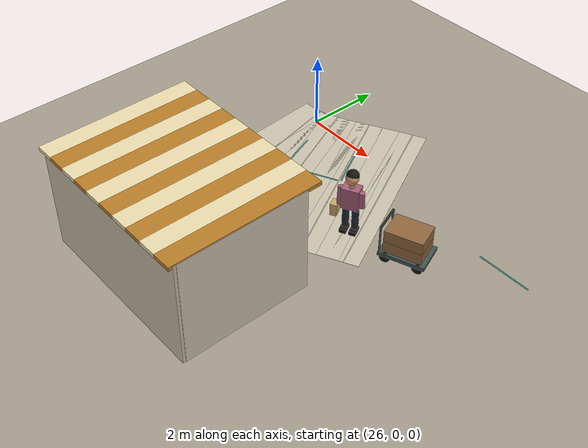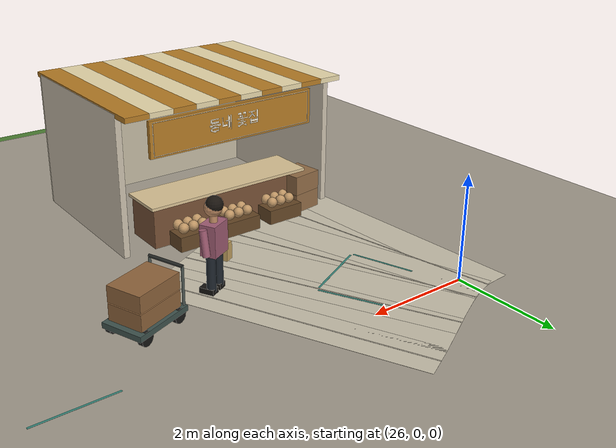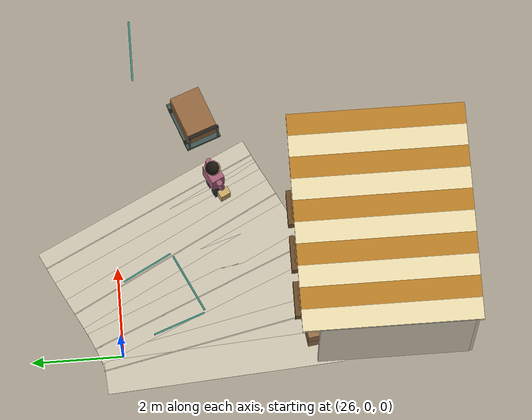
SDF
<sdf version="1.10">
 <world name="swan_town">
  <model name="ground_plane">
   <pose>-14 30 -0.025 0 0 0</pose>
   <static>true</static>
   <link name="link">
    <collision name="collision">
     <geometry><plane><normal>0 0 1</normal><size>100 100</size></plane></geometry>
    </collision>
    <visual name="visual">
     <geometry><plane><normal>0 0 1</normal><size>100 100</size></plane></geometry>
     <material><ambient>0.3 0.5 0.2 1</ambient><diffuse>0.3 0.5 0.2 1</diffuse></material>
    </visual>
   </link>
  </model>
  <model name="ground">
   <static>true</static>
   <pose>15 0 -0.1 0 0 0</pose>
   <link name="body">
    <collision name="box_collision"><geometry><box><size>46 24 0.2</size></box></geometry></collision>
    <visual name="box_visual">
     <geometry><box><size>46 24 0.2</size></box></geometry>
     <material><ambient>0.64 0.61 0.55 1</ambient><diffuse>0.64 0.61 0.55 1</diffuse></material>
    </visual>
   </link>
  </model>
  <model name="market_paving_55">
   <static>true</static>
   <pose>25.75 -2.191 0.002 0 0 0.072021</pose>
   <link name="body">
    <visual name="box_visual">
     <geometry><box><size>0.75 5.2 0.004</size></box></geometry>
     <material><ambient>0.79 0.76 0.68 1</ambient><diffuse>0.79 0.76 0.68 1</diffuse></material>
    </visual>
   </link>
  </model>
  <model name="market_paving_56">
   <static>true</static>
   <pose>26.25 -2.1197 0.002 0 0 0.2079</pose>
   <link name="body">
    <visual name="box_visual">
     <geometry><box><size>0.75 5.2 0.004</size></box></geometry>
     <material><ambient>0.79 0.76 0.68 1</ambient><diffuse>0.79 0.76 0.68 1</diffuse></material>
    </visual>
   </link>
  </model>
  <model name="paving_joint_56">
   <static>true</static>
   <pose>26.25 -2.1197 0.0045 0 0 0.2079</pose>
   <link name="body">
    <visual name="box_visual">
     <geometry><box><size>0.025 5.2 0.001</size></box></geometry>
     <material><ambient>0.67 0.64 0.57 1</ambient><diffuse>0.67 0.64 0.57 1</diffuse></material>
    </visual>
   </link>
  </model>
  <model name="market_paving_57">
   <static>true</static>
   <pose>26.75 -1.9827 0.002 0 0 0.32217</pose>
   <link name="body">
    <visual name="box_visual">
     <geometry><box><size>0.75 5.2 0.004</size></box></geometry>
     <material><ambient>0.79 0.76 0.68 1</ambient><diffuse>0.79 0.76 0.68 1</diffuse></material>
    </visual>
   </link>
  </model>
  <model name="market_paving_58">
   <static>true</static>
   <pose>27.25 -1.7901 0.002 0 0 0.40758</pose>
   <link name="body">
    <visual name="box_visual">
     <geometry><box><size>0.75 5.2 0.004</size></box></geometry>
     <material><ambient>0.79 0.76 0.68 1</ambient><diffuse>0.79 0.76 0.68 1</diffuse></material>
    </visual>
   </link>
  </model>
  <model name="paving_joint_58">
   <static>true</static>
   <pose>27.25 -1.7901 0.0045 0 0 0.40758</pose>
   <link name="body">
    <visual name="box_visual">
     <geometry><box><size>0.025 5.2 0.001</size></box></geometry>
     <material><ambient>0.67 0.64 0.57 1</ambient><diffuse>0.67 0.64 0.57 1</diffuse></material>
    </visual>
   </link>
  </model>
  <model name="market_paving_59">
   <static>true</static>
   <pose>27.75 -1.5562 0.002 0 0 0.46221</pose>
   <link name="body">
    <visual name="box_visual">
     <geometry><box><size>0.75 5.2 0.004</size></box></geometry>
     <material><ambient>0.79 0.76 0.68 1</ambient><diffuse>0.79 0.76 0.68 1</diffuse></material>
    </visual>
   </link>
  </model>
  <model name="market_paving_60">
   <static>true</static>
   <pose>28.25 -1.2978 0.002 0 0 0.48699</pose>
   <link name="body">
    <visual name="box_visual">
     <geometry><box><size>0.75 5.2 0.004</size></box></geometry>
     <material><ambient>0.79 0.76 0.68 1</ambient><diffuse>0.79 0.76 0.68 1</diffuse></material>
    </visual>
   </link>
  </model>
  <model name="paving_joint_60">
   <static>true</static>
   <pose>28.25 -1.2978 0.0045 0 0 0.48699</pose>
   <link name="body">
    <visual name="box_visual">
     <geometry><box><size>0.025 5.2 0.001</size></box></geometry>
     <material><ambient>0.67 0.64 0.57 1</ambient><diffuse>0.67 0.64 0.57 1</diffuse></material>
    </visual>
   </link>
  </model>
  <model name="market_paving_61">
   <static>true</static>
   <pose>28.75 -1.0326 0.002 0 0 0.48375</pose>
   <link name="body">
    <visual name="box_visual">
     <geometry><box><size>0.75 5.2 0.004</size></box></geometry>
     <material><ambient>0.79 0.76 0.68 1</ambient><diffuse>0.79 0.76 0.68 1</diffuse></material>
    </visual>
   </link>
  </model>
  <model name="market_paving_62">
   <static>true</static>
   <pose>29.25 -0.77782 0.002 0 0 0.45458</pose>
   <link name="body">
    <visual name="box_visual">
     <geometry><box><size>0.75 5.2 0.004</size></box></geometry>
     <material><ambient>0.79 0.76 0.68 1</ambient><diffuse>0.79 0.76 0.68 1</diffuse></material>
    </visual>
   </link>
  </model>
  <model name="paving_joint_62">
   <static>true</static>
   <pose>29.25 -0.77782 0.0045 0 0 0.45458</pose>
   <link name="body">
    <visual name="box_visual">
     <geometry><box><size>0.025 5.2 0.001</size></box></geometry>
     <material><ambient>0.67 0.64 0.57 1</ambient><diffuse>0.67 0.64 0.57 1</diffuse></material>
    </visual>
   </link>
  </model>
  <model name="stall_07">
   <static>true</static>
   <pose>28 -5.8789 0 0 0 0</pose>
   <link name="body">
    <collision name="rear_collision">
     <pose>0 -1.65 1.4 0 0 0</pose>
     <geometry><box><size>4.8 0.15 2.8</size></box></geometry>
    </collision>
    <visual name="rear_visual">
     <pose>0 -1.65 1.4 0 0 0</pose>
     <geometry><box><size>4.8 0.15 2.8</size></box></geometry>
     <material><ambient>0.78 0.74 0.65 1</ambient><diffuse>0.78 0.74 0.65 1</diffuse></material>
    </visual>
    <collision name="side_-2.35_collision">
     <pose>-2.35 0 1.4 0 0 0</pose>
     <geometry><box><size>0.12 3.3 2.8</size></box></geometry>
    </collision>
    <visual name="side_-2.35_visual">
     <pose>-2.35 0 1.4 0 0 0</pose>
     <geometry><box><size>0.12 3.3 2.8</size></box></geometry>
     <material><ambient>0.81 0.77 0.69 1</ambient><diffuse>0.81 0.77 0.69 1</diffuse></material>
    </visual>
    <collision name="side_2.35_collision">
     <pose>2.35 0 1.4 0 0 0</pose>
     <geometry><box><size>0.12 3.3 2.8</size></box></geometry>
    </collision>
    <visual name="side_2.35_visual">
     <pose>2.35 0 1.4 0 0 0</pose>
     <geometry><box><size>0.12 3.3 2.8</size></box></geometry>
     <material><ambient>0.81 0.77 0.69 1</ambient><diffuse>0.81 0.77 0.69 1</diffuse></material>
    </visual>
    <collision name="counter_collision">
     <pose>0 1.22 0.4 0 0 0</pose>
     <geometry><box><size>3.5 0.85 0.8</size></box></geometry>
    </collision>
    <visual name="counter_visual">
     <pose>0 1.22 0.4 0 0 0</pose>
     <geometry><box><size>3.5 0.85 0.8</size></box></geometry>
     <material><ambient>0.47 0.32 0.21 1</ambient><diffuse>0.47 0.32 0.21 1</diffuse></material>
    </visual>
    <collision name="counter_top_collision">
     <pose>0 1.22 0.83 0 0 0</pose>
     <geometry><box><size>3.6 0.95 0.06</size></box></geometry>
    </collision>
    <visual name="counter_top_visual">
     <pose>0 1.22 0.83 0 0 0</pose>
     <geometry><box><size>3.6 0.95 0.06</size></box></geometry>
     <material><ambient>0.86 0.77 0.59 1</ambient><diffuse>0.86 0.77 0.59 1</diffuse></material>
    </visual>
    <collision name="awning_0_collision">
     <pose>-2.16 0.1 2.78 0 0 0</pose>
     <geometry><box><size>0.48 3.85 0.1</size></box></geometry>
    </collision>
    <visual name="awning_0_visual">
     <pose>-2.16 0.1 2.78 0 0 0</pose>
     <geometry><box><size>0.48 3.85 0.1</size></box></geometry>
     <material><ambient>0.92 0.86 0.68 1</ambient><diffuse>0.92 0.86 0.68 1</diffuse></material>
    </visual>
    <collision name="awning_1_collision">
     <pose>-1.68 0.1 2.78 0 0 0</pose>
     <geometry><box><size>0.48 3.85 0.1</size></box></geometry>
    </collision>
    <visual name="awning_1_visual">
     <pose>-1.68 0.1 2.78 0 0 0</pose>
     <geometry><box><size>0.48 3.85 0.1</size></box></geometry>
     <material><ambient>0.72 0.49 0.15 1</ambient><diffuse>0.72 0.49 0.15 1</diffuse></material>
    </visual>
    <collision name="awning_2_collision">
     <pose>-1.2 0.1 2.78 0 0 0</pose>
     <geometry><box><size>0.48 3.85 0.1</size></box></geometry>
    </collision>
    <visual name="awning_2_visual">
     <pose>-1.2 0.1 2.78 0 0 0</pose>
     <geometry><box><size>0.48 3.85 0.1</size></box></geometry>
     <material><ambient>0.92 0.86 0.68 1</ambient><diffuse>0.92 0.86 0.68 1</diffuse></material>
    </visual>
    <collision name="awning_3_collision">
     <pose>-0.72 0.1 2.78 0 0 0</pose>
     <geometry><box><size>0.48 3.85 0.1</size></box></geometry>
    </collision>
    <visual name="awning_3_visual">
     <pose>-0.72 0.1 2.78 0 0 0</pose>
     <geometry><box><size>0.48 3.85 0.1</size></box></geometry>
     <material><ambient>0.72 0.49 0.15 1</ambient><diffuse>0.72 0.49 0.15 1</diffuse></material>
    </visual>
    <collision name="awning_4_collision">
     <pose>-0.24 0.1 2.78 0 0 0</pose>
     <geometry><box><size>0.48 3.85 0.1</size></box></geometry>
    </collision>
    <visual name="awning_4_visual">
     <pose>-0.24 0.1 2.78 0 0 0</pose>
     <geometry><box><size>0.48 3.85 0.1</size></box></geometry>
     <material><ambient>0.92 0.86 0.68 1</ambient><diffuse>0.92 0.86 0.68 1</diffuse></material>
    </visual>
    <collision name="awning_5_collision">
     <pose>0.24 0.1 2.78 0 0 0</pose>
     <geometry><box><size>0.48 3.85 0.1</size></box></geometry>
    </collision>
    <visual name="awning_5_visual">
     <pose>0.24 0.1 2.78 0 0 0</pose>
     <geometry><box><size>0.48 3.85 0.1</size></box></geometry>
     <material><ambient>0.72 0.49 0.15 1</ambient><diffuse>0.72 0.49 0.15 1</diffuse></material>
    </visual>
    <collision name="awning_6_collision">
     <pose>0.72 0.1 2.78 0 0 0</pose>
     <geometry><box><size>0.48 3.85 0.1</size></box></geometry>
    </collision>
    <visual name="awning_6_visual">
     <pose>0.72 0.1 2.78 0 0 0</pose>
     <geometry><box><size>0.48 3.85 0.1</size></box></geometry>
     <material><ambient>0.92 0.86 0.68 1</ambient><diffuse>0.92 0.86 0.68 1</diffuse></material>
    </visual>
    <collision name="awning_7_collision">
     <pose>1.2 0.1 2.78 0 0 0</pose>
     <geometry><box><size>0.48 3.85 0.1</size></box></geometry>
    </collision>
    <visual name="awning_7_visual">
     <pose>1.2 0.1 2.78 0 0 0</pose>
     <geometry><box><size>0.48 3.85 0.1</size></box></geometry>
     <material><ambient>0.72 0.49 0.15 1</ambient><diffuse>0.72 0.49 0.15 1</diffuse></material>
    </visual>
    <collision name="awning_8_collision">
     <pose>1.68 0.1 2.78 0 0 0</pose>
     <geometry><box><size>0.48 3.85 0.1</size></box></geometry>
    </collision>
    <visual name="awning_8_visual">
     <pose>1.68 0.1 2.78 0 0 0</pose>
     <geometry><box><size>0.48 3.85 0.1</size></box></geometry>
     <material><ambient>0.92 0.86 0.68 1</ambient><diffuse>0.92 0.86 0.68 1</diffuse></material>
    </visual>
    <collision name="awning_9_collision">
     <pose>2.16 0.1 2.78 0 0 0</pose>
     <geometry><box><size>0.48 3.85 0.1</size></box></geometry>
    </collision>
    <visual name="awning_9_visual">
     <pose>2.16 0.1 2.78 0 0 0</pose>
     <geometry><box><size>0.48 3.85 0.1</size></box></geometry>
     <material><ambient>0.72 0.49 0.15 1</ambient><diffuse>0.72 0.49 0.15 1</diffuse></material>
    </visual>
    <collision name="crate_-1_collision">
     <pose>-1.04 1.77 0.15 0 0 0</pose>
     <geometry><box><size>0.78 0.6 0.3</size></box></geometry>
    </collision>
    <visual name="crate_-1_visual">
     <pose>-1.04 1.77 0.15 0 0 0</pose>
     <geometry><box><size>0.78 0.6 0.3</size></box></geometry>
     <material><ambient>0.4 0.28 0.15 1</ambient><diffuse>0.4 0.28 0.15 1</diffuse></material>
    </visual>
    <visual name="produce_-1_0_visual">
     <pose>-1.25 1.66 0.39 0 0 0</pose>
     <geometry><sphere><radius>0.105</radius></sphere></geometry>
     <material><ambient>0.74 0.58 0.39 1</ambient><diffuse>0.74 0.58 0.39 1</diffuse></material>
    </visual>
    <visual name="produce_-1_1_visual">
     <pose>-1.04 1.66 0.39 0 0 0</pose>
     <geometry><sphere><radius>0.105</radius></sphere></geometry>
     <material><ambient>0.74 0.58 0.39 1</ambient><diffuse>0.74 0.58 0.39 1</diffuse></material>
    </visual>
    <visual name="produce_-1_2_visual">
     <pose>-0.83 1.66 0.39 0 0 0</pose>
     <geometry><sphere><radius>0.105</radius></sphere></geometry>
     <material><ambient>0.74 0.58 0.39 1</ambient><diffuse>0.74 0.58 0.39 1</diffuse></material>
    </visual>
    <visual name="produce_-1_3_visual">
     <pose>-1.25 1.88 0.39 0 0 0</pose>
     <geometry><sphere><radius>0.105</radius></sphere></geometry>
     <material><ambient>0.74 0.58 0.39 1</ambient><diffuse>0.74 0.58 0.39 1</diffuse></material>
    </visual>
    <visual name="produce_-1_4_visual">
     <pose>-1.04 1.88 0.39 0 0 0</pose>
     <geometry><sphere><radius>0.105</radius></sphere></geometry>
     <material><ambient>0.74 0.58 0.39 1</ambient><diffuse>0.74 0.58 0.39 1</diffuse></material>
    </visual>
    <visual name="produce_-1_5_visual">
     <pose>-0.83 1.88 0.39 0 0 0</pose>
     <geometry><sphere><radius>0.105</radius></sphere></geometry>
     <material><ambient>0.74 0.58 0.39 1</ambient><diffuse>0.74 0.58 0.39 1</diffuse></material>
    </visual>
    <collision name="crate_0_collision">
     <pose>0 1.77 0.15 0 0 0</pose>
     <geometry><box><size>0.78 0.6 0.3</size></box></geometry>
    </collision>
    <visual name="crate_0_visual">
     <pose>0 1.77 0.15 0 0 0</pose>
     <geometry><box><size>0.78 0.6 0.3</size></box></geometry>
     <material><ambient>0.4 0.28 0.15 1</ambient><diffuse>0.4 0.28 0.15 1</diffuse></material>
    </visual>
    <visual name="produce_0_0_visual">
     <pose>-0.21 1.66 0.39 0 0 0</pose>
     <geometry><sphere><radius>0.105</radius></sphere></geometry>
     <material><ambient>0.74 0.58 0.39 1</ambient><diffuse>0.74 0.58 0.39 1</diffuse></material>
    </visual>
    <visual name="produce_0_1_visual">
     <pose>0 1.66 0.39 0 0 0</pose>
     <geometry><sphere><radius>0.105</radius></sphere></geometry>
     <material><ambient>0.74 0.58 0.39 1</ambient><diffuse>0.74 0.58 0.39 1</diffuse></material>
    </visual>
    <visual name="produce_0_2_visual">
     <pose>0.21 1.66 0.39 0 0 0</pose>
     <geometry><sphere><radius>0.105</radius></sphere></geometry>
     <material><ambient>0.74 0.58 0.39 1</ambient><diffuse>0.74 0.58 0.39 1</diffuse></material>
    </visual>
    <visual name="produce_0_3_visual">
     <pose>-0.21 1.88 0.39 0 0 0</pose>
     <geometry><sphere><radius>0.105</radius></sphere></geometry>
     <material><ambient>0.74 0.58 0.39 1</ambient><diffuse>0.74 0.58 0.39 1</diffuse></material>
    </visual>
    <visual name="produce_0_4_visual">
     <pose>0 1.88 0.39 0 0 0</pose>
     <geometry><sphere><radius>0.105</radius></sphere></geometry>
     <material><ambient>0.74 0.58 0.39 1</ambient><diffuse>0.74 0.58 0.39 1</diffuse></material>
    </visual>
    <visual name="produce_0_5_visual">
     <pose>0.21 1.88 0.39 0 0 0</pose>
     <geometry><sphere><radius>0.105</radius></sphere></geometry>
     <material><ambient>0.74 0.58 0.39 1</ambient><diffuse>0.74 0.58 0.39 1</diffuse></material>
    </visual>
    <collision name="crate_1_collision">
     <pose>1.04 1.77 0.15 0 0 0</pose>
     <geometry><box><size>0.78 0.6 0.3</size></box></geometry>
    </collision>
    <visual name="crate_1_visual">
     <pose>1.04 1.77 0.15 0 0 0</pose>
     <geometry><box><size>0.78 0.6 0.3</size></box></geometry>
     <material><ambient>0.4 0.28 0.15 1</ambient><diffuse>0.4 0.28 0.15 1</diffuse></material>
    </visual>
    <visual name="produce_1_0_visual">
     <pose>0.83 1.66 0.39 0 0 0</pose>
     <geometry><sphere><radius>0.105</radius></sphere></geometry>
     <material><ambient>0.74 0.58 0.39 1</ambient><diffuse>0.74 0.58 0.39 1</diffuse></material>
    </visual>
    <visual name="produce_1_1_visual">
     <pose>1.04 1.66 0.39 0 0 0</pose>
     <geometry><sphere><radius>0.105</radius></sphere></geometry>
     <material><ambient>0.74 0.58 0.39 1</ambient><diffuse>0.74 0.58 0.39 1</diffuse></material>
    </visual>
    <visual name="produce_1_2_visual">
     <pose>1.25 1.66 0.39 0 0 0</pose>
     <geometry><sphere><radius>0.105</radius></sphere></geometry>
     <material><ambient>0.74 0.58 0.39 1</ambient><diffuse>0.74 0.58 0.39 1</diffuse></material>
    </visual>
    <visual name="produce_1_3_visual">
     <pose>0.83 1.88 0.39 0 0 0</pose>
     <geometry><sphere><radius>0.105</radius></sphere></geometry>
     <material><ambient>0.74 0.58 0.39 1</ambient><diffuse>0.74 0.58 0.39 1</diffuse></material>
    </visual>
    <visual name="produce_1_4_visual">
     <pose>1.04 1.88 0.39 0 0 0</pose>
     <geometry><sphere><radius>0.105</radius></sphere></geometry>
     <material><ambient>0.74 0.58 0.39 1</ambient><diffuse>0.74 0.58 0.39 1</diffuse></material>
    </visual>
    <visual name="produce_1_5_visual">
     <pose>1.25 1.88 0.39 0 0 0</pose>
     <geometry><sphere><radius>0.105</radius></sphere></geometry>
     <material><ambient>0.74 0.58 0.39 1</ambient><diffuse>0.74 0.58 0.39 1</diffuse></material>
    </visual>
   </link>
  </model>
  <model name="signboard_7">
   <static>true</static>
   <pose>28 -4.1189 2.24 0 0 0</pose>
   <link name="body">
    <collision name="box_collision"><geometry><box><size>3.65 0.08 0.72</size></box></geometry></collision>
    <visual name="box_visual">
     <geometry><box><size>3.65 0.08 0.72</size></box></geometry>
     <material><ambient>0.72 0.49 0.15 1</ambient><diffuse>0.72 0.49 0.15 1</diffuse></material>
    </visual>
   </link>
  </model>
  <model name="sign_shop_7">
   <static>true</static>
   <pose>28 -4.0709 2.24 0 0 -3.14158530718</pose>
   <link name="body">
    <visual name="top_visual">
     <pose>0 -0.003 0.32062 0 0 0</pose>
     <geometry><box><size>3.5136 0.003 0.0108</size></box></geometry>
     <material><ambient>1 0.961 0.875 1</ambient><diffuse>1 0.961 0.875 1</diffuse></material>
    </visual>
    <visual name="bottom_visual">
     <pose>0 -0.003 -0.32062 0 0 0</pose>
     <geometry><box><size>3.5136 0.003 0.0108</size></box></geometry>
     <material><ambient>1 0.961 0.875 1</ambient><diffuse>1 0.961 0.875 1</diffuse></material>
    </visual>
    <visual name="left_visual">
     <pose>-1.7568 -0.003 0 0 0 0</pose>
     <geometry><box><size>0.0108 0.003 0.64125</size></box></geometry>
     <material><ambient>1 0.961 0.875 1</ambient><diffuse>1 0.961 0.875 1</diffuse></material>
    </visual>
    <visual name="right_visual">
     <pose>1.7568 -0.003 0 0 0 0</pose>
     <geometry><box><size>0.0108 0.003 0.64125</size></box></geometry>
     <material><ambient>1 0.961 0.875 1</ambient><diffuse>1 0.961 0.875 1</diffuse></material>
    </visual>
    <visual name="ink_0_visual">
     <pose>-0.14062 -0.003 0.15938 0 0 0</pose>
     <geometry><box><size>0.01875 0.003 0.01875</size></box></geometry>
     <material><ambient>1 0.961 0.875 1</ambient><diffuse>1 0.961 0.875 1</diffuse></material>
    </visual>
    <visual name="ink_1_visual">
     <pose>-0.45 -0.003 0.14062 0 0 0</pose>
     <geometry><box><size>0.1875 0.003 0.01875</size></box></geometry>
     <material><ambient>1 0.961 0.875 1</ambient><diffuse>1 0.961 0.875 1</diffuse></material>
    </visual>
    <visual name="ink_2_visual">
     <pose>0.1125 -0.003 0.15 0 0 0</pose>
     <geometry><box><size>0.075 0.003 0.0375</size></box></geometry>
     <material><ambient>1 0.961 0.875 1</ambient><diffuse>1 0.961 0.875 1</diffuse></material>
    </visual>
    <visual name="ink_3_visual">
     <pose>0.225 -0.003 0.15 0 0 0</pose>
     <geometry><box><size>0.075 0.003 0.0375</size></box></geometry>
     <material><ambient>1 0.961 0.875 1</ambient><diffuse>1 0.961 0.875 1</diffuse></material>
    </visual>
    <visual name="ink_4_visual">
     <pose>0.40312 -0.003 0.14062 0 0 0</pose>
     <geometry><box><size>0.16875 0.003 0.01875</size></box></geometry>
     <material><ambient>1 0.961 0.875 1</ambient><diffuse>1 0.961 0.875 1</diffuse></material>
    </visual>
    <visual name="ink_5_visual">
     <pose>0.14062 -0.003 0.12188 0 0 0</pose>
     <geometry><box><size>0.01875 0.003 0.01875</size></box></geometry>
     <material><ambient>1 0.961 0.875 1</ambient><diffuse>1 0.961 0.875 1</diffuse></material>
    </visual>
    <visual name="ink_6_visual">
     <pose>0.39375 -0.003 0.12188 0 0 0</pose>
     <geometry><box><size>0.0375 0.003 0.01875</size></box></geometry>
     <material><ambient>1 0.961 0.875 1</ambient><diffuse>1 0.961 0.875 1</diffuse></material>
    </visual>
    <visual name="ink_7_visual">
     <pose>-0.525 -0.003 0.1125 0 0 0</pose>
     <geometry><box><size>0.0375 0.003 0.0375</size></box></geometry>
     <material><ambient>1 0.961 0.875 1</ambient><diffuse>1 0.961 0.875 1</diffuse></material>
    </visual>
    <visual name="ink_8_visual">
     <pose>0.40312 -0.003 0.10313 0 0 0</pose>
     <geometry><box><size>0.01875 0.003 0.01875</size></box></geometry>
     <material><ambient>1 0.961 0.875 1</ambient><diffuse>1 0.961 0.875 1</diffuse></material>
    </visual>
    <visual name="ink_9_visual">
     <pose>-0.45 -0.003 0.084375 0 0 0</pose>
     <geometry><box><size>0.1875 0.003 0.01875</size></box></geometry>
     <material><ambient>1 0.961 0.875 1</ambient><diffuse>1 0.961 0.875 1</diffuse></material>
    </visual>
    <visual name="ink_10_visual">
     <pose>-0.13125 -0.003 0.1125 0 0 0</pose>
     <geometry><box><size>0.0375 0.003 0.075</size></box></geometry>
     <material><ambient>1 0.961 0.875 1</ambient><diffuse>1 0.961 0.875 1</diffuse></material>
    </visual>
    <visual name="ink_11_visual">
     <pose>0.13125 -0.003 0.09375 0 0 0</pose>
     <geometry><box><size>0.0375 0.003 0.0375</size></box></geometry>
     <material><ambient>1 0.961 0.875 1</ambient><diffuse>1 0.961 0.875 1</diffuse></material>
    </visual>
    <visual name="ink_12_visual">
     <pose>0.17812 -0.003 0.09375 0 0 0</pose>
     <geometry><box><size>0.01875 0.003 0.0375</size></box></geometry>
     <material><ambient>1 0.961 0.875 1</ambient><diffuse>1 0.961 0.875 1</diffuse></material>
    </visual>
    <visual name="ink_13_visual">
     <pose>0.25312 -0.003 0.10313 0 0 0</pose>
     <geometry><box><size>0.01875 0.003 0.05625</size></box></geometry>
     <material><ambient>1 0.961 0.875 1</ambient><diffuse>1 0.961 0.875 1</diffuse></material>
    </visual>
    <visual name="ink_14_visual">
     <pose>0.40312 -0.003 0.084375 0 0 0</pose>
     <geometry><box><size>0.05625 0.003 0.01875</size></box></geometry>
     <material><ambient>1 0.961 0.875 1</ambient><diffuse>1 0.961 0.875 1</diffuse></material>
    </visual>
    <visual name="ink_15_visual">
     <pose>-0.44062 -0.003 0.065625 0 0 0</pose>
     <geometry><box><size>0.16875 0.003 0.01875</size></box></geometry>
     <material><ambient>1 0.961 0.875 1</ambient><diffuse>1 0.961 0.875 1</diffuse></material>
    </visual>
    <visual name="ink_16_visual">
     <pose>-0.15937 -0.003 0.065625 0 0 0</pose>
     <geometry><box><size>0.09375 0.003 0.01875</size></box></geometry>
     <material><ambient>1 0.961 0.875 1</ambient><diffuse>1 0.961 0.875 1</diffuse></material>
    </visual>
    <visual name="ink_17_visual">
     <pose>0.16875 -0.003 0.065625 0 0 0</pose>
     <geometry><box><size>0.0375 0.003 0.01875</size></box></geometry>
     <material><ambient>1 0.961 0.875 1</ambient><diffuse>1 0.961 0.875 1</diffuse></material>
    </visual>
    <visual name="ink_18_visual">
     <pose>0.375 -0.003 0.065625 0 0 0</pose>
     <geometry><box><size>0.0375 0.003 0.01875</size></box></geometry>
     <material><ambient>1 0.961 0.875 1</ambient><diffuse>1 0.961 0.875 1</diffuse></material>
    </visual>
    <visual name="ink_19_visual">
     <pose>0.43125 -0.003 0.065625 0 0 0</pose>
     <geometry><box><size>0.0375 0.003 0.01875</size></box></geometry>
     <material><ambient>1 0.961 0.875 1</ambient><diffuse>1 0.961 0.875 1</diffuse></material>
    </visual>
    <visual name="ink_20_visual">
     <pose>-0.44062 -0.003 0.046875 0 0 0</pose>
     <geometry><box><size>0.01875 0.003 0.01875</size></box></geometry>
     <material><ambient>1 0.961 0.875 1</ambient><diffuse>1 0.961 0.875 1</diffuse></material>
    </visual>
    <visual name="ink_21_visual">
     <pose>0.17812 -0.003 0.046875 0 0 0</pose>
     <geometry><box><size>0.24375 0.003 0.01875</size></box></geometry>
     <material><ambient>1 0.961 0.875 1</ambient><diffuse>1 0.961 0.875 1</diffuse></material>
    </visual>
    <visual name="ink_22_visual">
     <pose>0.35625 -0.003 0.046875 0 0 0</pose>
     <geometry><box><size>0.0375 0.003 0.01875</size></box></geometry>
     <material><ambient>1 0.961 0.875 1</ambient><diffuse>1 0.961 0.875 1</diffuse></material>
    </visual>
    <visual name="ink_23_visual">
     <pose>0.45 -0.003 0.046875 0 0 0</pose>
     <geometry><box><size>0.0375 0.003 0.01875</size></box></geometry>
     <material><ambient>1 0.961 0.875 1</ambient><diffuse>1 0.961 0.875 1</diffuse></material>
    </visual>
    <visual name="ink_24_visual">
     <pose>-0.44062 -0.003 0.028125 0 0 0</pose>
     <geometry><box><size>0.24375 0.003 0.01875</size></box></geometry>
     <material><ambient>1 0.961 0.875 1</ambient><diffuse>1 0.961 0.875 1</diffuse></material>
    </visual>
    <visual name="ink_25_visual">
     <pose>0.3375 -0.003 0.028125 0 0 0</pose>
     <geometry><box><size>0.0375 0.003 0.01875</size></box></geometry>
     <material><ambient>1 0.961 0.875 1</ambient><diffuse>1 0.961 0.875 1</diffuse></material>
    </visual>
    <visual name="ink_26_visual">
     <pose>0.45937 -0.003 0.028125 0 0 0</pose>
     <geometry><box><size>0.01875 0.003 0.01875</size></box></geometry>
     <material><ambient>1 0.961 0.875 1</ambient><diffuse>1 0.961 0.875 1</diffuse></material>
    </visual>
    <visual name="ink_27_visual">
     <pose>0.525 -0.003 0.09375 0 0 0</pose>
     <geometry><box><size>0.0375 0.003 0.15</size></box></geometry>
     <material><ambient>1 0.961 0.875 1</ambient><diffuse>1 0.961 0.875 1</diffuse></material>
    </visual>
    <visual name="ink_28_visual">
     <pose>-0.525 -0.003 0.009375 0 0 0</pose>
     <geometry><box><size>0.075 0.003 0.01875</size></box></geometry>
     <material><ambient>1 0.961 0.875 1</ambient><diffuse>1 0.961 0.875 1</diffuse></material>
    </visual>
    <visual name="ink_29_visual">
     <pose>-0.35625 -0.003 0.009375 0 0 0</pose>
     <geometry><box><size>0.075 0.003 0.01875</size></box></geometry>
     <material><ambient>1 0.961 0.875 1</ambient><diffuse>1 0.961 0.875 1</diffuse></material>
    </visual>
    <visual name="ink_30_visual">
     <pose>-0.27187 -0.003 0.075 0 0 0</pose>
     <geometry><box><size>0.01875 0.003 0.15</size></box></geometry>
     <material><ambient>1 0.961 0.875 1</ambient><diffuse>1 0.961 0.875 1</diffuse></material>
    </visual>
    <visual name="ink_31_visual">
     <pose>0.16875 -0.003 0.009375 0 0 0</pose>
     <geometry><box><size>0.075 0.003 0.01875</size></box></geometry>
     <material><ambient>1 0.961 0.875 1</ambient><diffuse>1 0.961 0.875 1</diffuse></material>
    </visual>
    <visual name="ink_32_visual">
     <pose>-0.45 -0.003 -0.009375 0 0 0</pose>
     <geometry><box><size>0.075 0.003 0.01875</size></box></geometry>
     <material><ambient>1 0.961 0.875 1</ambient><diffuse>1 0.961 0.875 1</diffuse></material>
    </visual>
    <visual name="ink_33_visual">
     <pose>0.375 -0.003 -0.009375 0 0 0</pose>
     <geometry><box><size>0.0375 0.003 0.01875</size></box></geometry>
     <material><ambient>1 0.961 0.875 1</ambient><diffuse>1 0.961 0.875 1</diffuse></material>
    </visual>
    <visual name="ink_34_visual">
     <pose>0.525 -0.003 -0.009375 0 0 0</pose>
     <geometry><box><size>0.0375 0.003 0.01875</size></box></geometry>
     <material><ambient>1 0.961 0.875 1</ambient><diffuse>1 0.961 0.875 1</diffuse></material>
    </visual>
    <visual name="ink_35_visual">
     <pose>-0.44062 -0.003 -0.028125 0 0 0</pose>
     <geometry><box><size>0.16875 0.003 0.01875</size></box></geometry>
     <material><ambient>1 0.961 0.875 1</ambient><diffuse>1 0.961 0.875 1</diffuse></material>
    </visual>
    <visual name="ink_36_visual">
     <pose>-0.225 -0.003 -0.01875 0 0 0</pose>
     <geometry><box><size>0.1125 0.003 0.0375</size></box></geometry>
     <material><ambient>1 0.961 0.875 1</ambient><diffuse>1 0.961 0.875 1</diffuse></material>
    </visual>
    <visual name="ink_37_visual">
     <pose>0.16875 -0.003 -0.028125 0 0 0</pose>
     <geometry><box><size>0.1875 0.003 0.01875</size></box></geometry>
     <material><ambient>1 0.961 0.875 1</ambient><diffuse>1 0.961 0.875 1</diffuse></material>
    </visual>
    <visual name="ink_38_visual">
     <pose>0.16875 -0.003 -0.046875 0 0 0</pose>
     <geometry><box><size>0.0375 0.003 0.01875</size></box></geometry>
     <material><ambient>1 0.961 0.875 1</ambient><diffuse>1 0.961 0.875 1</diffuse></material>
    </visual>
    <visual name="ink_39_visual">
     <pose>0.45 -0.003 -0.0375 0 0 0</pose>
     <geometry><box><size>0.1875 0.003 0.0375</size></box></geometry>
     <material><ambient>1 0.961 0.875 1</ambient><diffuse>1 0.961 0.875 1</diffuse></material>
    </visual>
    <visual name="ink_40_visual">
     <pose>-0.525 -0.003 -0.05625 0 0 0</pose>
     <geometry><box><size>0.0375 0.003 0.0375</size></box></geometry>
     <material><ambient>1 0.961 0.875 1</ambient><diffuse>1 0.961 0.875 1</diffuse></material>
    </visual>
    <visual name="ink_41_visual">
     <pose>-0.36563 -0.003 -0.05625 0 0 0</pose>
     <geometry><box><size>0.01875 0.003 0.0375</size></box></geometry>
     <material><ambient>1 0.961 0.875 1</ambient><diffuse>1 0.961 0.875 1</diffuse></material>
    </visual>
    <visual name="ink_42_visual">
     <pose>-0.13125 -0.003 -0.009375 0 0 0</pose>
     <geometry><box><size>0.0375 0.003 0.13125</size></box></geometry>
     <material><ambient>1 0.961 0.875 1</ambient><diffuse>1 0.961 0.875 1</diffuse></material>
    </visual>
    <visual name="ink_43_visual">
     <pose>0.16875 -0.003 -0.065625 0 0 0</pose>
     <geometry><box><size>0.075 0.003 0.01875</size></box></geometry>
     <material><ambient>1 0.961 0.875 1</ambient><diffuse>1 0.961 0.875 1</diffuse></material>
    </visual>
    <visual name="ink_44_visual">
     <pose>0.375 -0.003 -0.065625 0 0 0</pose>
     <geometry><box><size>0.0375 0.003 0.01875</size></box></geometry>
     <material><ambient>1 0.961 0.875 1</ambient><diffuse>1 0.961 0.875 1</diffuse></material>
    </visual>
    <visual name="ink_45_visual">
     <pose>0.525 -0.003 -0.065625 0 0 0</pose>
     <geometry><box><size>0.0375 0.003 0.01875</size></box></geometry>
     <material><ambient>1 0.961 0.875 1</ambient><diffuse>1 0.961 0.875 1</diffuse></material>
    </visual>
    <visual name="ink_46_visual">
     <pose>-0.44062 -0.003 -0.084375 0 0 0</pose>
     <geometry><box><size>0.16875 0.003 0.01875</size></box></geometry>
     <material><ambient>1 0.961 0.875 1</ambient><diffuse>1 0.961 0.875 1</diffuse></material>
    </visual>
    <visual name="ink_47_visual">
     <pose>-0.14062 -0.003 -0.084375 0 0 0</pose>
     <geometry><box><size>0.01875 0.003 0.01875</size></box></geometry>
     <material><ambient>1 0.961 0.875 1</ambient><diffuse>1 0.961 0.875 1</diffuse></material>
    </visual>
    <visual name="ink_48_visual">
     <pose>0.1125 -0.003 -0.084375 0 0 0</pose>
     <geometry><box><size>0.075 0.003 0.01875</size></box></geometry>
     <material><ambient>1 0.961 0.875 1</ambient><diffuse>1 0.961 0.875 1</diffuse></material>
    </visual>
    <visual name="ink_49_visual">
     <pose>0.23437 -0.003 -0.084375 0 0 0</pose>
     <geometry><box><size>0.05625 0.003 0.01875</size></box></geometry>
     <material><ambient>1 0.961 0.875 1</ambient><diffuse>1 0.961 0.875 1</diffuse></material>
    </visual>
    <visual name="ink_50_visual">
     <pose>0.45 -0.003 -0.084375 0 0 0</pose>
     <geometry><box><size>0.1875 0.003 0.01875</size></box></geometry>
     <material><ambient>1 0.961 0.875 1</ambient><diffuse>1 0.961 0.875 1</diffuse></material>
    </visual>
    <visual name="ink_51_visual">
     <pose>-0.45 -0.003 -0.10313 0 0 0</pose>
     <geometry><box><size>0.075 0.003 0.01875</size></box></geometry>
     <material><ambient>1 0.961 0.875 1</ambient><diffuse>1 0.961 0.875 1</diffuse></material>
    </visual>
    <visual name="ink_52_visual">
     <pose>-0.084375 -0.003 0.028125 0 0 0</pose>
     <geometry><box><size>0.01875 0.003 0.28125</size></box></geometry>
     <material><ambient>1 0.961 0.875 1</ambient><diffuse>1 0.961 0.875 1</diffuse></material>
    </visual>
    <visual name="ink_53_visual">
     <pose>0.09375 -0.003 -0.10313 0 0 0</pose>
     <geometry><box><size>0.0375 0.003 0.01875</size></box></geometry>
     <material><ambient>1 0.961 0.875 1</ambient><diffuse>1 0.961 0.875 1</diffuse></material>
    </visual>
    <visual name="ink_54_visual">
     <pose>0.25312 -0.003 -0.10313 0 0 0</pose>
     <geometry><box><size>0.01875 0.003 0.01875</size></box></geometry>
     <material><ambient>1 0.961 0.875 1</ambient><diffuse>1 0.961 0.875 1</diffuse></material>
    </visual>
   </link>
  </model>
  <model name="shopper_flowers">
   <static>true</static>
   <pose>29.682 -2.2387 0 0 0 -1.0985</pose>
   <link name="body">
    <collision name="leg_-1_collision">
     <pose>0 -0.12 0.4 0 0 0</pose>
     <geometry><cylinder><radius>0.085</radius><length>0.68</length></cylinder></geometry>
    </collision>
    <visual name="leg_-1_visual">
     <pose>0 -0.12 0.4 0 0 0</pose>
     <geometry><cylinder><radius>0.085</radius><length>0.68</length></cylinder></geometry>
     <material><ambient>0.12 0.15 0.18 1</ambient><diffuse>0.12 0.15 0.18 1</diffuse></material>
    </visual>
    <collision name="shoe_-1_collision">
     <pose>0.06 -0.12 0.055 0 0 0</pose>
     <geometry><box><size>0.28 0.17 0.11</size></box></geometry>
    </collision>
    <visual name="shoe_-1_visual">
     <pose>0.06 -0.12 0.055 0 0 0</pose>
     <geometry><box><size>0.28 0.17 0.11</size></box></geometry>
     <material><ambient>0.08 0.07 0.06 1</ambient><diffuse>0.08 0.07 0.06 1</diffuse></material>
    </visual>
    <collision name="arm_-1_collision">
     <pose>0.02 -0.27 1.02 0 -0.12 0</pose>
     <geometry><cylinder><radius>0.068</radius><length>0.48</length></cylinder></geometry>
    </collision>
    <visual name="arm_-1_visual">
     <pose>0.02 -0.27 1.02 0 -0.12 0</pose>
     <geometry><cylinder><radius>0.068</radius><length>0.48</length></cylinder></geometry>
     <material><ambient>0.64 0.37 0.46 1</ambient><diffuse>0.64 0.37 0.46 1</diffuse></material>
    </visual>
    <collision name="leg_1_collision">
     <pose>0 0.12 0.4 0 0 0</pose>
     <geometry><cylinder><radius>0.085</radius><length>0.68</length></cylinder></geometry>
    </collision>
    <visual name="leg_1_visual">
     <pose>0 0.12 0.4 0 0 0</pose>
     <geometry><cylinder><radius>0.085</radius><length>0.68</length></cylinder></geometry>
     <material><ambient>0.12 0.15 0.18 1</ambient><diffuse>0.12 0.15 0.18 1</diffuse></material>
    </visual>
    <collision name="shoe_1_collision">
     <pose>0.06 0.12 0.055 0 0 0</pose>
     <geometry><box><size>0.28 0.17 0.11</size></box></geometry>
    </collision>
    <visual name="shoe_1_visual">
     <pose>0.06 0.12 0.055 0 0 0</pose>
     <geometry><box><size>0.28 0.17 0.11</size></box></geometry>
     <material><ambient>0.08 0.07 0.06 1</ambient><diffuse>0.08 0.07 0.06 1</diffuse></material>
    </visual>
    <collision name="arm_1_collision">
     <pose>0.02 0.27 1.02 0 0.12 0</pose>
     <geometry><cylinder><radius>0.068</radius><length>0.48</length></cylinder></geometry>
    </collision>
    <visual name="arm_1_visual">
     <pose>0.02 0.27 1.02 0 0.12 0</pose>
     <geometry><cylinder><radius>0.068</radius><length>0.48</length></cylinder></geometry>
     <material><ambient>0.64 0.37 0.46 1</ambient><diffuse>0.64 0.37 0.46 1</diffuse></material>
    </visual>
    <collision name="torso_collision">
     <pose>0 0 1.02 0 0 0</pose>
     <geometry><box><size>0.3 0.43 0.58</size></box></geometry>
    </collision>
    <visual name="torso_visual">
     <pose>0 0 1.02 0 0 0</pose>
     <geometry><box><size>0.3 0.43 0.58</size></box></geometry>
     <material><ambient>0.64 0.37 0.46 1</ambient><diffuse>0.64 0.37 0.46 1</diffuse></material>
    </visual>
    <visual name="neck_visual">
     <pose>0 0 1.37 0 0 0</pose>
     <geometry><cylinder><radius>0.07</radius><length>0.13</length></cylinder></geometry>
     <material><ambient>0.77 0.56 0.4 1</ambient><diffuse>0.77 0.56 0.4 1</diffuse></material>
    </visual>
    <collision name="head_collision">
     <pose>0 0 1.57 0 0 0</pose>
     <geometry><sphere><radius>0.16</radius></sphere></geometry>
    </collision>
    <visual name="head_visual">
     <pose>0 0 1.57 0 0 0</pose>
     <geometry><sphere><radius>0.16</radius></sphere></geometry>
     <material><ambient>0.77 0.56 0.4 1</ambient><diffuse>0.77 0.56 0.4 1</diffuse></material>
    </visual>
    <visual name="hair_visual">
     <pose>-0.025 0 1.63 0 0 0</pose>
     <geometry><sphere><radius>0.155</radius></sphere></geometry>
     <material><ambient>0.1 0.08 0.06 1</ambient><diffuse>0.1 0.08 0.06 1</diffuse></material>
    </visual>
    <collision name="shopping_bag_collision">
     <pose>0.04 -0.38 0.6 0 0 0</pose>
     <geometry><box><size>0.24 0.17 0.33</size></box></geometry>
    </collision>
    <visual name="shopping_bag_visual">
     <pose>0.04 -0.38 0.6 0 0 0</pose>
     <geometry><box><size>0.24 0.17 0.33</size></box></geometry>
     <material><ambient>0.78 0.65 0.39 1</ambient><diffuse>0.78 0.65 0.39 1</diffuse></material>
    </visual>
   </link>
  </model>
  <model name="vendor_3">
   <static>true</static>
   <pose>30.048 -5.3797 0 0 0 2.049</pose>
   <link name="body">
    <collision name="leg_-1_collision">
     <pose>0 -0.12 0.4 0 0 0</pose>
     <geometry><cylinder><radius>0.085</radius><length>0.68</length></cylinder></geometry>
    </collision>
    <visual name="leg_-1_visual">
     <pose>0 -0.12 0.4 0 0 0</pose>
     <geometry><cylinder><radius>0.085</radius><length>0.68</length></cylinder></geometry>
     <material><ambient>0.12 0.15 0.18 1</ambient><diffuse>0.12 0.15 0.18 1</diffuse></material>
    </visual>
    <collision name="shoe_-1_collision">
     <pose>0.06 -0.12 0.055 0 0 0</pose>
     <geometry><box><size>0.28 0.17 0.11</size></box></geometry>
    </collision>
    <visual name="shoe_-1_visual">
     <pose>0.06 -0.12 0.055 0 0 0</pose>
     <geometry><box><size>0.28 0.17 0.11</size></box></geometry>
     <material><ambient>0.08 0.07 0.06 1</ambient><diffuse>0.08 0.07 0.06 1</diffuse></material>
    </visual>
    <collision name="arm_-1_collision">
     <pose>0.02 -0.27 1.02 0 -0.12 0</pose>
     <geometry><cylinder><radius>0.068</radius><length>0.48</length></cylinder></geometry>
    </collision>
    <visual name="arm_-1_visual">
     <pose>0.02 -0.27 1.02 0 -0.12 0</pose>
     <geometry><cylinder><radius>0.068</radius><length>0.48</length></cylinder></geometry>
     <material><ambient>0.79 0.69 0.48 1</ambient><diffuse>0.79 0.69 0.48 1</diffuse></material>
    </visual>
    <collision name="leg_1_collision">
     <pose>0 0.12 0.4 0 0 0</pose>
     <geometry><cylinder><radius>0.085</radius><length>0.68</length></cylinder></geometry>
    </collision>
    <visual name="leg_1_visual">
     <pose>0 0.12 0.4 0 0 0</pose>
     <geometry><cylinder><radius>0.085</radius><length>0.68</length></cylinder></geometry>
     <material><ambient>0.12 0.15 0.18 1</ambient><diffuse>0.12 0.15 0.18 1</diffuse></material>
    </visual>
    <collision name="shoe_1_collision">
     <pose>0.06 0.12 0.055 0 0 0</pose>
     <geometry><box><size>0.28 0.17 0.11</size></box></geometry>
    </collision>
    <visual name="shoe_1_visual">
     <pose>0.06 0.12 0.055 0 0 0</pose>
     <geometry><box><size>0.28 0.17 0.11</size></box></geometry>
     <material><ambient>0.08 0.07 0.06 1</ambient><diffuse>0.08 0.07 0.06 1</diffuse></material>
    </visual>
    <collision name="arm_1_collision">
     <pose>0.02 0.27 1.02 0 0.12 0</pose>
     <geometry><cylinder><radius>0.068</radius><length>0.48</length></cylinder></geometry>
    </collision>
    <visual name="arm_1_visual">
     <pose>0.02 0.27 1.02 0 0.12 0</pose>
     <geometry><cylinder><radius>0.068</radius><length>0.48</length></cylinder></geometry>
     <material><ambient>0.79 0.69 0.48 1</ambient><diffuse>0.79 0.69 0.48 1</diffuse></material>
    </visual>
    <collision name="torso_collision">
     <pose>0 0 1.02 0 0 0</pose>
     <geometry><box><size>0.3 0.43 0.58</size></box></geometry>
    </collision>
    <visual name="torso_visual">
     <pose>0 0 1.02 0 0 0</pose>
     <geometry><box><size>0.3 0.43 0.58</size></box></geometry>
     <material><ambient>0.79 0.69 0.48 1</ambient><diffuse>0.79 0.69 0.48 1</diffuse></material>
    </visual>
    <visual name="neck_visual">
     <pose>0 0 1.37 0 0 0</pose>
     <geometry><cylinder><radius>0.07</radius><length>0.13</length></cylinder></geometry>
     <material><ambient>0.77 0.56 0.4 1</ambient><diffuse>0.77 0.56 0.4 1</diffuse></material>
    </visual>
    <collision name="head_collision">
     <pose>0 0 1.57 0 0 0</pose>
     <geometry><sphere><radius>0.16</radius></sphere></geometry>
    </collision>
    <visual name="head_visual">
     <pose>0 0 1.57 0 0 0</pose>
     <geometry><sphere><radius>0.16</radius></sphere></geometry>
     <material><ambient>0.77 0.56 0.4 1</ambient><diffuse>0.77 0.56 0.4 1</diffuse></material>
    </visual>
    <visual name="hair_visual">
     <pose>-0.025 0 1.63 0 0 0</pose>
     <geometry><sphere><radius>0.155</radius></sphere></geometry>
     <material><ambient>0.1 0.08 0.06 1</ambient><diffuse>0.1 0.08 0.06 1</diffuse></material>
    </visual>
   </link>
  </model>
  <model name="handcart_waiting">
   <static>true</static>
   <pose>31.216 -1.8932 0 0 0 0.36006</pose>
   <link name="body">
    <collision name="bed_collision">
     <pose>0 0 0.2 0 0 0</pose>
     <geometry><box><size>1.15 0.8 0.1</size></box></geometry>
    </collision>
    <visual name="bed_visual">
     <pose>0 0 0.2 0 0 0</pose>
     <geometry><box><size>1.15 0.8 0.1</size></box></geometry>
     <material><ambient>0.25 0.33 0.31 1</ambient><diffuse>0.25 0.33 0.31 1</diffuse></material>
    </visual>
    <collision name="wheel_-0.4_-0.34_collision">
     <pose>-0.4 -0.34 0.13 1.5708 0 0</pose>
     <geometry><cylinder><radius>0.13</radius><length>0.1</length></cylinder></geometry>
    </collision>
    <visual name="wheel_-0.4_-0.34_visual">
     <pose>-0.4 -0.34 0.13 1.5708 0 0</pose>
     <geometry><cylinder><radius>0.13</radius><length>0.1</length></cylinder></geometry>
     <material><ambient>0.09 0.09 0.08 1</ambient><diffuse>0.09 0.09 0.08 1</diffuse></material>
    </visual>
    <collision name="wheel_-0.4_0.34_collision">
     <pose>-0.4 0.34 0.13 1.5708 0 0</pose>
     <geometry><cylinder><radius>0.13</radius><length>0.1</length></cylinder></geometry>
    </collision>
    <visual name="wheel_-0.4_0.34_visual">
     <pose>-0.4 0.34 0.13 1.5708 0 0</pose>
     <geometry><cylinder><radius>0.13</radius><length>0.1</length></cylinder></geometry>
     <material><ambient>0.09 0.09 0.08 1</ambient><diffuse>0.09 0.09 0.08 1</diffuse></material>
    </visual>
    <collision name="wheel_0.4_-0.34_collision">
     <pose>0.4 -0.34 0.13 1.5708 0 0</pose>
     <geometry><cylinder><radius>0.13</radius><length>0.1</length></cylinder></geometry>
    </collision>
    <visual name="wheel_0.4_-0.34_visual">
     <pose>0.4 -0.34 0.13 1.5708 0 0</pose>
     <geometry><cylinder><radius>0.13</radius><length>0.1</length></cylinder></geometry>
     <material><ambient>0.09 0.09 0.08 1</ambient><diffuse>0.09 0.09 0.08 1</diffuse></material>
    </visual>
    <collision name="wheel_0.4_0.34_collision">
     <pose>0.4 0.34 0.13 1.5708 0 0</pose>
     <geometry><cylinder><radius>0.13</radius><length>0.1</length></cylinder></geometry>
    </collision>
    <visual name="wheel_0.4_0.34_visual">
     <pose>0.4 0.34 0.13 1.5708 0 0</pose>
     <geometry><cylinder><radius>0.13</radius><length>0.1</length></cylinder></geometry>
     <material><ambient>0.09 0.09 0.08 1</ambient><diffuse>0.09 0.09 0.08 1</diffuse></material>
    </visual>
    <collision name="cargo_0.41_collision">
     <pose>0 0 0.41 0 0 0</pose>
     <geometry><box><size>0.95 0.68 0.3</size></box></geometry>
    </collision>
    <visual name="cargo_0.41_visual">
     <pose>0 0 0.41 0 0 0</pose>
     <geometry><box><size>0.95 0.68 0.3</size></box></geometry>
     <material><ambient>0.57 0.4 0.24 1</ambient><diffuse>0.57 0.4 0.24 1</diffuse></material>
    </visual>
    <collision name="cargo_0.73_collision">
     <pose>0 0 0.73 0 0 0</pose>
     <geometry><box><size>0.95 0.68 0.3</size></box></geometry>
    </collision>
    <visual name="cargo_0.73_visual">
     <pose>0 0 0.73 0 0 0</pose>
     <geometry><box><size>0.95 0.68 0.3</size></box></geometry>
     <material><ambient>0.57 0.4 0.24 1</ambient><diffuse>0.57 0.4 0.24 1</diffuse></material>
    </visual>
    <collision name="handle_-0.34_collision">
     <pose>-0.55 -0.34 0.58 0 0 0</pose>
     <geometry><cylinder><radius>0.025</radius><length>0.75</length></cylinder></geometry>
    </collision>
    <visual name="handle_-0.34_visual">
     <pose>-0.55 -0.34 0.58 0 0 0</pose>
     <geometry><cylinder><radius>0.025</radius><length>0.75</length></cylinder></geometry>
     <material><ambient>0.3 0.34 0.32 1</ambient><diffuse>0.3 0.34 0.32 1</diffuse></material>
    </visual>
    <collision name="handle_0.34_collision">
     <pose>-0.55 0.34 0.58 0 0 0</pose>
     <geometry><cylinder><radius>0.025</radius><length>0.75</length></cylinder></geometry>
    </collision>
    <visual name="handle_0.34_visual">
     <pose>-0.55 0.34 0.58 0 0 0</pose>
     <geometry><cylinder><radius>0.025</radius><length>0.75</length></cylinder></geometry>
     <material><ambient>0.3 0.34 0.32 1</ambient><diffuse>0.3 0.34 0.32 1</diffuse></material>
    </visual>
    <collision name="grip_collision">
     <pose>-0.55 0 0.95 1.5708 0 0</pose>
     <geometry><cylinder><radius>0.03</radius><length>0.7</length></cylinder></geometry>
    </collision>
    <visual name="grip_visual">
     <pose>-0.55 0 0.95 1.5708 0 0</pose>
     <geometry><cylinder><radius>0.03</radius><length>0.7</length></cylinder></geometry>
     <material><ambient>0.15 0.16 0.15 1</ambient><diffuse>0.15 0.16 0.15 1</diffuse></material>
    </visual>
   </link>
  </model>
  <model name="stock_stack_3_0">
   <static>true</static>
   <pose>26.304 -4.2924 0.2 0 0 0.14195</pose>
   <link name="body">
    <collision name="box_collision"><geometry><box><size>0.65 0.6 0.4</size></box></geometry></collision>
    <visual name="box_visual">
     <geometry><box><size>0.65 0.6 0.4</size></box></geometry>
     <material><ambient>0.58 0.43 0.28 1</ambient><diffuse>0.58 0.43 0.28 1</diffuse></material>
    </visual>
   </link>
  </model>
  <model name="stock_stack_3_1">
   <static>true</static>
   <pose>26.304 -4.2924 0.6 0 0 0.14195</pose>
   <link name="body">
    <collision name="box_collision"><geometry><box><size>0.65 0.6 0.4</size></box></geometry></collision>
    <visual name="box_visual">
     <geometry><box><size>0.65 0.6 0.4</size></box></geometry>
     <material><ambient>0.58 0.43 0.28 1</ambient><diffuse>0.58 0.43 0.28 1</diffuse></material>
    </visual>
   </link>
  </model>
  <model name="stop_1_-0.7_0">
   <static>true</static>
   <pose>26.659 -1.2728 0.009 0 0 0.35099</pose>
   <link name="body">
    <visual name="box_visual">
     <geometry><box><size>0.04 1.2 0.002</size></box></geometry>
     <material><ambient>0.22 0.52 0.47 1</ambient><diffuse>0.22 0.52 0.47 1</diffuse></material>
    </visual>
   </link>
  </model>
  <model name="stop_1_0.7_0">
   <static>true</static>
   <pose>27.972 -0.65294 0.009 0 0 0.4879</pose>
   <link name="body">
    <visual name="box_visual">
     <geometry><box><size>0.04 1.2 0.002</size></box></geometry>
     <material><ambient>0.22 0.52 0.47 1</ambient><diffuse>0.22 0.52 0.47 1</diffuse></material>
    </visual>
   </link>
  </model>
  <model name="stop_1_0_-0.6">
   <static>true</static>
   <pose>27.557 -1.5397 0.009 0 0 0.44903</pose>
   <link name="body">
    <visual name="box_visual">
     <geometry><box><size>1.4 0.04 0.002</size></box></geometry>
     <material><ambient>0.22 0.52 0.47 1</ambient><diffuse>0.22 0.52 0.47 1</diffuse></material>
    </visual>
   </link>
  </model>
  <model name="stop_2_0_-0.6">
   <static>true</static>
   <pose>33 -0.6 0.009 0 0 0</pose>
   <link name="body">
    <visual name="box_visual">
     <geometry><box><size>1.4 0.04 0.002</size></box></geometry>
     <material><ambient>0.22 0.52 0.47 1</ambient><diffuse>0.22 0.52 0.47 1</diffuse></material>
    </visual>
   </link>
  </model>
 </world>
</sdf>
